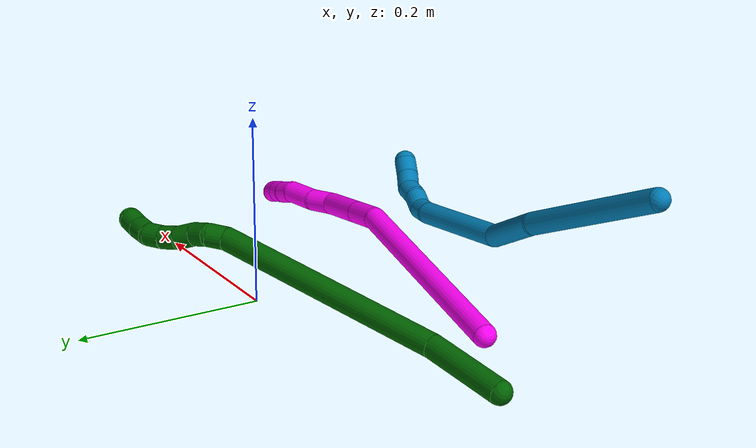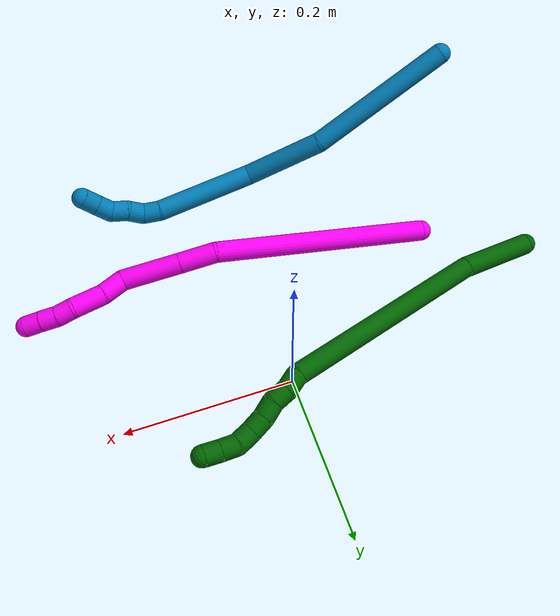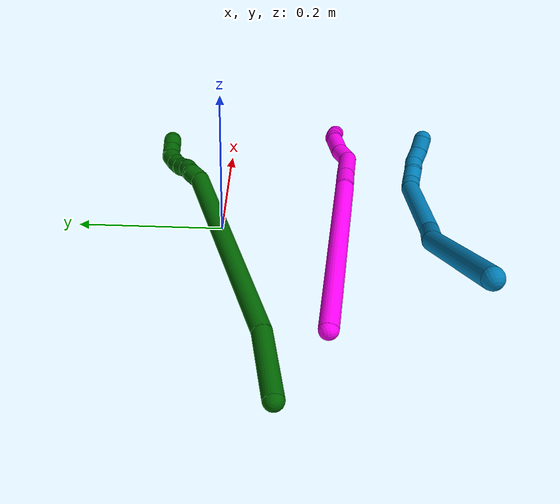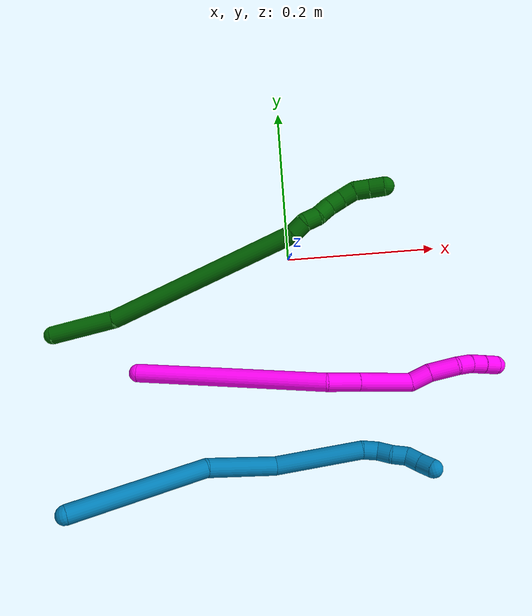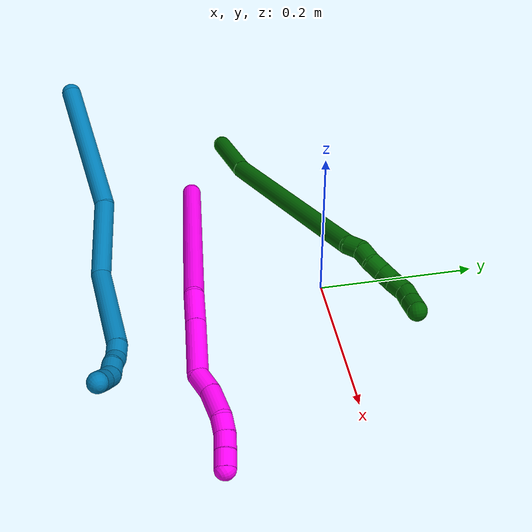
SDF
<sdf version="1.7">
 <world name="default">
  <model name="6">
   <static>0</static>
   <link name="6">
    <collision name="collision-cylinder-e_1_1_4">
     <pose>0.036785 0.009172 -0.02571 -2.79892 0.932396 -2.47918</pose>
     <geometry><cylinder><radius>0.0125</radius><length>0.091613</length></cylinder></geometry>
     <surface>
      <friction><ode><mu>1.16</mu><mu2>1.16</mu2><slip1>0</slip1><slip2>0</slip2></ode></friction>
      <contact><ode><kp>1e+06</kp><kd>1</kd><max_vel>0</max_vel><min_depth>0.001</min_depth></ode></contact>
     </surface>
    </collision>
    <visual name="visual-cylinder-e_1_1_4">
     <pose>0.036785 0.009172 -0.02571 -2.79892 0.932396 -2.47918</pose>
     <geometry><cylinder><radius>0.0125</radius><length>0.091613</length></cylinder></geometry>
     <material><ambient>0 0.392157 0.003922 1</ambient></material>
    </visual>
    <collision name="collision-cylinder-e_2_4_5">
     <pose>0.176231 0.068389 -0.121279 -2.51997 0.873853 -1.93662</pose>
     <geometry><cylinder><radius>0.0125</radius><length>0.267764</length></cylinder></geometry>
     <surface>
      <friction><ode><mu>1.16</mu><mu2>1.16</mu2><slip1>0</slip1><slip2>0</slip2></ode></friction>
      <contact><ode><kp>1e+06</kp><kd>1</kd><max_vel>0</max_vel><min_depth>0.001</min_depth></ode></contact>
     </surface>
    </collision>
    <visual name="visual-cylinder-e_2_4_5">
     <pose>0.176231 0.068389 -0.121279 -2.51997 0.873853 -1.93662</pose>
     <geometry><cylinder><radius>0.0125</radius><length>0.267764</length></cylinder></geometry>
     <material><ambient>0 0.392157 0.003922 1</ambient></material>
    </visual>
    <collision name="collision-cylinder-e_3_5_6">
     <pose>0.284785 0.125394 -0.195946 -2.1751 0.608401 -1.07831</pose>
     <geometry><cylinder><radius>0.0125</radius><length>0.020617</length></cylinder></geometry>
     <surface>
      <friction><ode><mu>1.16</mu><mu2>1.16</mu2><slip1>0</slip1><slip2>0</slip2></ode></friction>
      <contact><ode><kp>1e+06</kp><kd>1</kd><max_vel>0</max_vel><min_depth>0.001</min_depth></ode></contact>
     </surface>
    </collision>
    <visual name="visual-cylinder-e_3_5_6">
     <pose>0.284785 0.125394 -0.195946 -2.1751 0.608401 -1.07831</pose>
     <geometry><cylinder><radius>0.0125</radius><length>0.020617</length></cylinder></geometry>
     <material><ambient>0 0.392157 0.003922 1</ambient></material>
    </visual>
    <collision name="collision-cylinder-e_4_6_7">
     <pose>0.295729 0.136097 -0.208531 -2.69324 0.529536 -1.74316</pose>
     <geometry><cylinder><radius>0.0125</radius><length>0.020003</length></cylinder></geometry>
     <surface>
      <friction><ode><mu>1.16</mu><mu2>1.16</mu2><slip1>0</slip1><slip2>0</slip2></ode></friction>
      <contact><ode><kp>1e+06</kp><kd>1</kd><max_vel>0</max_vel><min_depth>0.001</min_depth></ode></contact>
     </surface>
    </collision>
    <visual name="visual-cylinder-e_4_6_7">
     <pose>0.295729 0.136097 -0.208531 -2.69324 0.529536 -1.74316</pose>
     <geometry><cylinder><radius>0.0125</radius><length>0.020003</length></cylinder></geometry>
     <material><ambient>0 0.392157 0.003922 1</ambient></material>
    </visual>
    <collision name="collision-cylinder-e_5_7_8">
     <pose>0.303567 0.145633 -0.22397 -2.494 0.282218 -0.800812</pose>
     <geometry><cylinder><radius>0.0125</radius><length>0.020003</length></cylinder></geometry>
     <surface>
      <friction><ode><mu>1.16</mu><mu2>1.16</mu2><slip1>0</slip1><slip2>0</slip2></ode></friction>
      <contact><ode><kp>1e+06</kp><kd>1</kd><max_vel>0</max_vel><min_depth>0.001</min_depth></ode></contact>
     </surface>
    </collision>
    <visual name="visual-cylinder-e_5_7_8">
     <pose>0.303567 0.145633 -0.22397 -2.494 0.282218 -0.800812</pose>
     <geometry><cylinder><radius>0.0125</radius><length>0.020003</length></cylinder></geometry>
     <material><ambient>0 0.392157 0.003922 1</ambient></material>
    </visual>
    <collision name="collision-cylinder-e_6_8_9">
     <pose>0.311201 0.156343 -0.238865 -2.54481 0.506239 -1.39848</pose>
     <geometry><cylinder><radius>0.0125</radius><length>0.02</length></cylinder></geometry>
     <surface>
      <friction><ode><mu>1.16</mu><mu2>1.16</mu2><slip1>0</slip1><slip2>0</slip2></ode></friction>
      <contact><ode><kp>1e+06</kp><kd>1</kd><max_vel>0</max_vel><min_depth>0.001</min_depth></ode></contact>
     </surface>
    </collision>
    <visual name="visual-cylinder-e_6_8_9">
     <pose>0.311201 0.156343 -0.238865 -2.54481 0.506239 -1.39848</pose>
     <geometry><cylinder><radius>0.0125</radius><length>0.02</length></cylinder></geometry>
     <material><ambient>0 0.392157 0.003922 1</ambient></material>
    </visual>
    <collision name="collision-cylinder-e_7_9_10">
     <pose>0.32207 0.166035 -0.252498 -2.50028 0.646008 -1.57862</pose>
     <geometry><cylinder><radius>0.0125</radius><length>0.02</length></cylinder></geometry>
     <surface>
      <friction><ode><mu>1.16</mu><mu2>1.16</mu2><slip1>0</slip1><slip2>0</slip2></ode></friction>
      <contact><ode><kp>1e+06</kp><kd>1</kd><max_vel>0</max_vel><min_depth>0.001</min_depth></ode></contact>
     </surface>
    </collision>
    <visual name="visual-cylinder-e_7_9_10">
     <pose>0.32207 0.166035 -0.252498 -2.50028 0.646008 -1.57862</pose>
     <geometry><cylinder><radius>0.0125</radius><length>0.02</length></cylinder></geometry>
     <material><ambient>0 0.392157 0.003922 1</ambient></material>
    </visual>
    <collision name="collision-cylinder-e_8_10_11">
     <pose>0.335654 0.171758 -0.265369 -2.99652 0.857769 -2.8264</pose>
     <geometry><cylinder><radius>0.0125</radius><length>0.02</length></cylinder></geometry>
     <surface>
      <friction><ode><mu>1.16</mu><mu2>1.16</mu2><slip1>0</slip1><slip2>0</slip2></ode></friction>
      <contact><ode><kp>1e+06</kp><kd>1</kd><max_vel>0</max_vel><min_depth>0.001</min_depth></ode></contact>
     </surface>
    </collision>
    <visual name="visual-cylinder-e_8_10_11">
     <pose>0.335654 0.171758 -0.265369 -2.99652 0.857769 -2.8264</pose>
     <geometry><cylinder><radius>0.0125</radius><length>0.02</length></cylinder></geometry>
     <material><ambient>0 0.392157 0.003922 1</ambient></material>
    </visual>
    <collision name="collision-cylinder-e_9_11_2">
     <pose>0.351439 0.173606 -0.277461 -2.98241 0.965241 -2.83946</pose>
     <geometry><cylinder><radius>0.0125</radius><length>0.02</length></cylinder></geometry>
     <surface>
      <friction><ode><mu>1.16</mu><mu2>1.16</mu2><slip1>0</slip1><slip2>0</slip2></ode></friction>
      <contact><ode><kp>1e+06</kp><kd>1</kd><max_vel>0</max_vel><min_depth>0.001</min_depth></ode></contact>
     </surface>
    </collision>
    <visual name="visual-cylinder-e_9_11_2">
     <pose>0.351439 0.173606 -0.277461 -2.98241 0.965241 -2.83946</pose>
     <geometry><cylinder><radius>0.0125</radius><length>0.02</length></cylinder></geometry>
     <material><ambient>0 0.392157 0.003922 1</ambient></material>
    </visual>
    <collision name="collision-sphere-2">
     <pose>0.359661 0.174508 -0.283082 0 -0 0</pose>
     <geometry><sphere><radius>0.0125</radius></sphere></geometry>
     <surface>
      <friction><ode><mu>1.16</mu><mu2>1.16</mu2><slip1>0</slip1><slip2>0</slip2></ode></friction>
      <contact><ode><kp>1e+06</kp><kd>1</kd><max_vel>0</max_vel><min_depth>0.001</min_depth></ode></contact>
     </surface>
    </collision>
    <visual name="visual-sphere-2">
     <pose>0.359661 0.174508 -0.283082 0 -0 0</pose>
     <geometry><sphere><radius>0.0125</radius></sphere></geometry>
     <material><ambient>0 0.392157 0.003922 1</ambient></material>
    </visual>
    <collision name="collision-sphere-11">
     <pose>0.343218 0.172703 -0.271841 0 -0 0</pose>
     <geometry><sphere><radius>0.0125</radius></sphere></geometry>
     <surface>
      <friction><ode><mu>1.16</mu><mu2>1.16</mu2><slip1>0</slip1><slip2>0</slip2></ode></friction>
      <contact><ode><kp>1e+06</kp><kd>1</kd><max_vel>0</max_vel><min_depth>0.001</min_depth></ode></contact>
     </surface>
    </collision>
    <visual name="visual-sphere-11">
     <pose>0.343218 0.172703 -0.271841 0 -0 0</pose>
     <geometry><sphere><radius>0.0125</radius></sphere></geometry>
     <material><ambient>0 0.392157 0.003922 1</ambient></material>
    </visual>
    <collision name="collision-sphere-10">
     <pose>0.32809 0.170812 -0.258896 0 -0 0</pose>
     <geometry><sphere><radius>0.0125</radius></sphere></geometry>
     <surface>
      <friction><ode><mu>1.16</mu><mu2>1.16</mu2><slip1>0</slip1><slip2>0</slip2></ode></friction>
      <contact><ode><kp>1e+06</kp><kd>1</kd><max_vel>0</max_vel><min_depth>0.001</min_depth></ode></contact>
     </surface>
    </collision>
    <visual name="visual-sphere-10">
     <pose>0.32809 0.170812 -0.258896 0 -0 0</pose>
     <geometry><sphere><radius>0.0125</radius></sphere></geometry>
     <material><ambient>0 0.392157 0.003922 1</ambient></material>
    </visual>
    <collision name="collision-sphere-9">
     <pose>0.31605 0.161258 -0.246099 0 -0 0</pose>
     <geometry><sphere><radius>0.0125</radius></sphere></geometry>
     <surface>
      <friction><ode><mu>1.16</mu><mu2>1.16</mu2><slip1>0</slip1><slip2>0</slip2></ode></friction>
      <contact><ode><kp>1e+06</kp><kd>1</kd><max_vel>0</max_vel><min_depth>0.001</min_depth></ode></contact>
     </surface>
    </collision>
    <visual name="visual-sphere-9">
     <pose>0.31605 0.161258 -0.246099 0 -0 0</pose>
     <geometry><sphere><radius>0.0125</radius></sphere></geometry>
     <material><ambient>0 0.392157 0.003922 1</ambient></material>
    </visual>
    <collision name="collision-sphere-4">
     <pose>0.07357 0.018344 -0.051419 0 -0 0</pose>
     <geometry><sphere><radius>0.0125</radius></sphere></geometry>
     <surface>
      <friction><ode><mu>1.16</mu><mu2>1.16</mu2><slip1>0</slip1><slip2>0</slip2></ode></friction>
      <contact><ode><kp>1e+06</kp><kd>1</kd><max_vel>0</max_vel><min_depth>0.001</min_depth></ode></contact>
     </surface>
    </collision>
    <visual name="visual-sphere-4">
     <pose>0.07357 0.018344 -0.051419 0 -0 0</pose>
     <geometry><sphere><radius>0.0125</radius></sphere></geometry>
     <material><ambient>0 0.392157 0.003922 1</ambient></material>
    </visual>
    <collision name="collision-sphere-1">
     <geometry><sphere><radius>0.0125</radius></sphere></geometry>
     <surface>
      <friction><ode><mu>1.16</mu><mu2>1.16</mu2><slip1>0</slip1><slip2>0</slip2></ode></friction>
      <contact><ode><kp>1e+06</kp><kd>1</kd><max_vel>0</max_vel><min_depth>0.001</min_depth></ode></contact>
     </surface>
    </collision>
    <visual name="visual-sphere-1">
     <geometry><sphere><radius>0.0125</radius></sphere></geometry>
     <material><ambient>0 0.392157 0.003922 1</ambient></material>
    </visual>
    <collision name="collision-sphere-8">
     <pose>0.306352 0.151428 -0.231631 0 -0 0</pose>
     <geometry><sphere><radius>0.0125</radius></sphere></geometry>
     <surface>
      <friction><ode><mu>1.16</mu><mu2>1.16</mu2><slip1>0</slip1><slip2>0</slip2></ode></friction>
      <contact><ode><kp>1e+06</kp><kd>1</kd><max_vel>0</max_vel><min_depth>0.001</min_depth></ode></contact>
     </surface>
    </collision>
    <visual name="visual-sphere-8">
     <pose>0.306352 0.151428 -0.231631 0 -0 0</pose>
     <geometry><sphere><radius>0.0125</radius></sphere></geometry>
     <material><ambient>0 0.392157 0.003922 1</ambient></material>
    </visual>
    <collision name="collision-sphere-5">
     <pose>0.278893 0.118434 -0.19114 0 -0 0</pose>
     <geometry><sphere><radius>0.0125</radius></sphere></geometry>
     <surface>
      <friction><ode><mu>1.16</mu><mu2>1.16</mu2><slip1>0</slip1><slip2>0</slip2></ode></friction>
      <contact><ode><kp>1e+06</kp><kd>1</kd><max_vel>0</max_vel><min_depth>0.001</min_depth></ode></contact>
     </surface>
    </collision>
    <visual name="visual-sphere-5">
     <pose>0.278893 0.118434 -0.19114 0 -0 0</pose>
     <geometry><sphere><radius>0.0125</radius></sphere></geometry>
     <material><ambient>0 0.392157 0.003922 1</ambient></material>
    </visual>
    <collision name="collision-sphere-6">
     <pose>0.290677 0.132355 -0.200752 0 -0 0</pose>
     <geometry><sphere><radius>0.0125</radius></sphere></geometry>
     <surface>
      <friction><ode><mu>1.16</mu><mu2>1.16</mu2><slip1>0</slip1><slip2>0</slip2></ode></friction>
      <contact><ode><kp>1e+06</kp><kd>1</kd><max_vel>0</max_vel><min_depth>0.001</min_depth></ode></contact>
     </surface>
    </collision>
    <visual name="visual-sphere-6">
     <pose>0.290677 0.132355 -0.200752 0 -0 0</pose>
     <geometry><sphere><radius>0.0125</radius></sphere></geometry>
     <material><ambient>0 0.392157 0.003922 1</ambient></material>
    </visual>
    <collision name="collision-sphere-7">
     <pose>0.300781 0.139839 -0.216309 0 -0 0</pose>
     <geometry><sphere><radius>0.0125</radius></sphere></geometry>
     <surface>
      <friction><ode><mu>1.16</mu><mu2>1.16</mu2><slip1>0</slip1><slip2>0</slip2></ode></friction>
      <contact><ode><kp>1e+06</kp><kd>1</kd><max_vel>0</max_vel><min_depth>0.001</min_depth></ode></contact>
     </surface>
    </collision>
    <visual name="visual-sphere-7">
     <pose>0.300781 0.139839 -0.216309 0 -0 0</pose>
     <geometry><sphere><radius>0.0125</radius></sphere></geometry>
     <material><ambient>0 0.392157 0.003922 1</ambient></material>
    </visual>
    <inertial>
     <pose>0.18965 0.081456 -0.136409 0 -0 0</pose>
     <mass>0.5</mass>
     <inertia>
      <ixx>-0.00137</ixx>
      <ixy>0</ixy>
      <ixz>0</ixz>
      <iyy>0.000222</iyy>
      <iyz>0</iyz>
      <izz>-0.001937</izz>
     </inertia>
    </inertial>
   </link>
   <pose>-0.329019 -0.079474 0.011486 0.027333 -0.779722 -0.043242</pose>
  </model>
  <model name="9">
   <static>0</static>
   <link name="9">
    <collision name="collision-cylinder-e_1_1_4">
     <pose>0.050382 -0.022411 -0.071257 2.83688 0.593389 2.21071</pose>
     <geometry><cylinder><radius>0.0125</radius><length>0.180202</length></cylinder></geometry>
     <surface>
      <friction><ode><mu>1.16</mu><mu2>1.16</mu2><slip1>0</slip1><slip2>0</slip2></ode></friction>
      <contact><ode><kp>1e+06</kp><kd>1</kd><max_vel>0</max_vel><min_depth>0.001</min_depth></ode></contact>
     </surface>
    </collision>
    <visual name="visual-cylinder-e_1_1_4">
     <pose>0.050382 -0.022411 -0.071257 2.83688 0.593389 2.21071</pose>
     <geometry><cylinder><radius>0.0125</radius><length>0.180202</length></cylinder></geometry>
     <material><ambient>0 0.490196 0.709804 1</ambient></material>
    </visual>
    <collision name="collision-cylinder-e_2_4_5">
     <pose>0.136798 -0.046043 -0.176285 3.10544 0.817481 3.05816</pose>
     <geometry><cylinder><radius>0.0125</radius><length>0.098799</length></cylinder></geometry>
     <surface>
      <friction><ode><mu>1.16</mu><mu2>1.16</mu2><slip1>0</slip1><slip2>0</slip2></ode></friction>
      <contact><ode><kp>1e+06</kp><kd>1</kd><max_vel>0</max_vel><min_depth>0.001</min_depth></ode></contact>
     </surface>
    </collision>
    <visual name="visual-cylinder-e_2_4_5">
     <pose>0.136798 -0.046043 -0.176285 3.10544 0.817481 3.05816</pose>
     <geometry><cylinder><radius>0.0125</radius><length>0.098799</length></cylinder></geometry>
     <material><ambient>0 0.490196 0.709804 1</ambient></material>
    </visual>
    <collision name="collision-cylinder-e_3_5_6">
     <pose>0.19305 -0.049074 -0.266385 3.10947 0.344459 2.95745</pose>
     <geometry><cylinder><radius>0.0125</radius><length>0.119752</length></cylinder></geometry>
     <surface>
      <friction><ode><mu>1.16</mu><mu2>1.16</mu2><slip1>0</slip1><slip2>0</slip2></ode></friction>
      <contact><ode><kp>1e+06</kp><kd>1</kd><max_vel>0</max_vel><min_depth>0.001</min_depth></ode></contact>
     </surface>
    </collision>
    <visual name="visual-cylinder-e_3_5_6">
     <pose>0.19305 -0.049074 -0.266385 3.10947 0.344459 2.95745</pose>
     <geometry><cylinder><radius>0.0125</radius><length>0.119752</length></cylinder></geometry>
     <material><ambient>0 0.490196 0.709804 1</ambient></material>
    </visual>
    <collision name="collision-cylinder-e_4_6_7">
     <pose>0.217846 -0.048878 -0.331956 -2.92784 0.450739 -2.26622</pose>
     <geometry><cylinder><radius>0.0125</radius><length>0.021012</length></cylinder></geometry>
     <surface>
      <friction><ode><mu>1.16</mu><mu2>1.16</mu2><slip1>0</slip1><slip2>0</slip2></ode></friction>
      <contact><ode><kp>1e+06</kp><kd>1</kd><max_vel>0</max_vel><min_depth>0.001</min_depth></ode></contact>
     </surface>
    </collision>
    <visual name="visual-cylinder-e_4_6_7">
     <pose>0.217846 -0.048878 -0.331956 -2.92784 0.450739 -2.26622</pose>
     <geometry><cylinder><radius>0.0125</radius><length>0.021012</length></cylinder></geometry>
     <material><ambient>0 0.490196 0.709804 1</ambient></material>
    </visual>
    <collision name="collision-cylinder-e_5_7_8">
     <pose>0.222503 -0.042143 -0.350135 -2.6549 0.007899 -0.031815</pose>
     <geometry><cylinder><radius>0.0125</radius><length>0.020225</length></cylinder></geometry>
     <surface>
      <friction><ode><mu>1.16</mu><mu2>1.16</mu2><slip1>0</slip1><slip2>0</slip2></ode></friction>
      <contact><ode><kp>1e+06</kp><kd>1</kd><max_vel>0</max_vel><min_depth>0.001</min_depth></ode></contact>
     </surface>
    </collision>
    <visual name="visual-cylinder-e_5_7_8">
     <pose>0.222503 -0.042143 -0.350135 -2.6549 0.007899 -0.031815</pose>
     <geometry><cylinder><radius>0.0125</radius><length>0.020225</length></cylinder></geometry>
     <material><ambient>0 0.490196 0.709804 1</ambient></material>
    </visual>
    <collision name="collision-cylinder-e_6_8_9">
     <pose>0.225143 -0.034555 -0.368308 -2.84143 0.258893 -1.42152</pose>
     <geometry><cylinder><radius>0.0125</radius><length>0.020001</length></cylinder></geometry>
     <surface>
      <friction><ode><mu>1.16</mu><mu2>1.16</mu2><slip1>0</slip1><slip2>0</slip2></ode></friction>
      <contact><ode><kp>1e+06</kp><kd>1</kd><max_vel>0</max_vel><min_depth>0.001</min_depth></ode></contact>
     </surface>
    </collision>
    <visual name="visual-cylinder-e_6_8_9">
     <pose>0.225143 -0.034555 -0.368308 -2.84143 0.258893 -1.42152</pose>
     <geometry><cylinder><radius>0.0125</radius><length>0.020001</length></cylinder></geometry>
     <material><ambient>0 0.490196 0.709804 1</ambient></material>
    </visual>
    <collision name="collision-cylinder-e_7_9_10">
     <pose>0.227434 -0.025077 -0.385038 -2.41819 -0.026857 0.07096</pose>
     <geometry><cylinder><radius>0.0125</radius><length>0.020007</length></cylinder></geometry>
     <surface>
      <friction><ode><mu>1.16</mu><mu2>1.16</mu2><slip1>0</slip1><slip2>0</slip2></ode></friction>
      <contact><ode><kp>1e+06</kp><kd>1</kd><max_vel>0</max_vel><min_depth>0.001</min_depth></ode></contact>
     </surface>
    </collision>
    <visual name="visual-cylinder-e_7_9_10">
     <pose>0.227434 -0.025077 -0.385038 -2.41819 -0.026857 0.07096</pose>
     <geometry><cylinder><radius>0.0125</radius><length>0.020007</length></cylinder></geometry>
     <material><ambient>0 0.490196 0.709804 1</ambient></material>
    </visual>
    <collision name="collision-cylinder-e_8_10_2">
     <pose>0.225482 -0.012294 -0.400227 -2.46609 -0.169126 0.473647</pose>
     <geometry><cylinder><radius>0.0125</radius><length>0.020003</length></cylinder></geometry>
     <surface>
      <friction><ode><mu>1.16</mu><mu2>1.16</mu2><slip1>0</slip1><slip2>0</slip2></ode></friction>
      <contact><ode><kp>1e+06</kp><kd>1</kd><max_vel>0</max_vel><min_depth>0.001</min_depth></ode></contact>
     </surface>
    </collision>
    <visual name="visual-cylinder-e_8_10_2">
     <pose>0.225482 -0.012294 -0.400227 -2.46609 -0.169126 0.473647</pose>
     <geometry><cylinder><radius>0.0125</radius><length>0.020003</length></cylinder></geometry>
     <material><ambient>0 0.490196 0.709804 1</ambient></material>
    </visual>
    <collision name="collision-sphere-2">
     <pose>0.223799 -0.006129 -0.407921 0 -0 0</pose>
     <geometry><sphere><radius>0.0125</radius></sphere></geometry>
     <surface>
      <friction><ode><mu>1.16</mu><mu2>1.16</mu2><slip1>0</slip1><slip2>0</slip2></ode></friction>
      <contact><ode><kp>1e+06</kp><kd>1</kd><max_vel>0</max_vel><min_depth>0.001</min_depth></ode></contact>
     </surface>
    </collision>
    <visual name="visual-sphere-2">
     <pose>0.223799 -0.006129 -0.407921 0 -0 0</pose>
     <geometry><sphere><radius>0.0125</radius></sphere></geometry>
     <material><ambient>0 0.490196 0.709804 1</ambient></material>
    </visual>
    <collision name="collision-sphere-10">
     <pose>0.227166 -0.018458 -0.392534 0 -0 0</pose>
     <geometry><sphere><radius>0.0125</radius></sphere></geometry>
     <surface>
      <friction><ode><mu>1.16</mu><mu2>1.16</mu2><slip1>0</slip1><slip2>0</slip2></ode></friction>
      <contact><ode><kp>1e+06</kp><kd>1</kd><max_vel>0</max_vel><min_depth>0.001</min_depth></ode></contact>
     </surface>
    </collision>
    <visual name="visual-sphere-10">
     <pose>0.227166 -0.018458 -0.392534 0 -0 0</pose>
     <geometry><sphere><radius>0.0125</radius></sphere></geometry>
     <material><ambient>0 0.490196 0.709804 1</ambient></material>
    </visual>
    <collision name="collision-sphere-9">
     <pose>0.227703 -0.031697 -0.377543 0 -0 0</pose>
     <geometry><sphere><radius>0.0125</radius></sphere></geometry>
     <surface>
      <friction><ode><mu>1.16</mu><mu2>1.16</mu2><slip1>0</slip1><slip2>0</slip2></ode></friction>
      <contact><ode><kp>1e+06</kp><kd>1</kd><max_vel>0</max_vel><min_depth>0.001</min_depth></ode></contact>
     </surface>
    </collision>
    <visual name="visual-sphere-9">
     <pose>0.227703 -0.031697 -0.377543 0 -0 0</pose>
     <geometry><sphere><radius>0.0125</radius></sphere></geometry>
     <material><ambient>0 0.490196 0.709804 1</ambient></material>
    </visual>
    <collision name="collision-sphere-4">
     <pose>0.100764 -0.044821 -0.142515 0 -0 0</pose>
     <geometry><sphere><radius>0.0125</radius></sphere></geometry>
     <surface>
      <friction><ode><mu>1.16</mu><mu2>1.16</mu2><slip1>0</slip1><slip2>0</slip2></ode></friction>
      <contact><ode><kp>1e+06</kp><kd>1</kd><max_vel>0</max_vel><min_depth>0.001</min_depth></ode></contact>
     </surface>
    </collision>
    <visual name="visual-sphere-4">
     <pose>0.100764 -0.044821 -0.142515 0 -0 0</pose>
     <geometry><sphere><radius>0.0125</radius></sphere></geometry>
     <material><ambient>0 0.490196 0.709804 1</ambient></material>
    </visual>
    <collision name="collision-sphere-1">
     <geometry><sphere><radius>0.0125</radius></sphere></geometry>
     <surface>
      <friction><ode><mu>1.16</mu><mu2>1.16</mu2><slip1>0</slip1><slip2>0</slip2></ode></friction>
      <contact><ode><kp>1e+06</kp><kd>1</kd><max_vel>0</max_vel><min_depth>0.001</min_depth></ode></contact>
     </surface>
    </collision>
    <visual name="visual-sphere-1">
     <geometry><sphere><radius>0.0125</radius></sphere></geometry>
     <material><ambient>0 0.490196 0.709804 1</ambient></material>
    </visual>
    <collision name="collision-sphere-8">
     <pose>0.222583 -0.037413 -0.359073 0 -0 0</pose>
     <geometry><sphere><radius>0.0125</radius></sphere></geometry>
     <surface>
      <friction><ode><mu>1.16</mu><mu2>1.16</mu2><slip1>0</slip1><slip2>0</slip2></ode></friction>
      <contact><ode><kp>1e+06</kp><kd>1</kd><max_vel>0</max_vel><min_depth>0.001</min_depth></ode></contact>
     </surface>
    </collision>
    <visual name="visual-sphere-8">
     <pose>0.222583 -0.037413 -0.359073 0 -0 0</pose>
     <geometry><sphere><radius>0.0125</radius></sphere></geometry>
     <material><ambient>0 0.490196 0.709804 1</ambient></material>
    </visual>
    <collision name="collision-sphere-5">
     <pose>0.172831 -0.047264 -0.210055 0 -0 0</pose>
     <geometry><sphere><radius>0.0125</radius></sphere></geometry>
     <surface>
      <friction><ode><mu>1.16</mu><mu2>1.16</mu2><slip1>0</slip1><slip2>0</slip2></ode></friction>
      <contact><ode><kp>1e+06</kp><kd>1</kd><max_vel>0</max_vel><min_depth>0.001</min_depth></ode></contact>
     </surface>
    </collision>
    <visual name="visual-sphere-5">
     <pose>0.172831 -0.047264 -0.210055 0 -0 0</pose>
     <geometry><sphere><radius>0.0125</radius></sphere></geometry>
     <material><ambient>0 0.490196 0.709804 1</ambient></material>
    </visual>
    <collision name="collision-sphere-6">
     <pose>0.21327 -0.050884 -0.322714 0 -0 0</pose>
     <geometry><sphere><radius>0.0125</radius></sphere></geometry>
     <surface>
      <friction><ode><mu>1.16</mu><mu2>1.16</mu2><slip1>0</slip1><slip2>0</slip2></ode></friction>
      <contact><ode><kp>1e+06</kp><kd>1</kd><max_vel>0</max_vel><min_depth>0.001</min_depth></ode></contact>
     </surface>
    </collision>
    <visual name="visual-sphere-6">
     <pose>0.21327 -0.050884 -0.322714 0 -0 0</pose>
     <geometry><sphere><radius>0.0125</radius></sphere></geometry>
     <material><ambient>0 0.490196 0.709804 1</ambient></material>
    </visual>
    <collision name="collision-sphere-7">
     <pose>0.222423 -0.046872 -0.341197 0 -0 0</pose>
     <geometry><sphere><radius>0.0125</radius></sphere></geometry>
     <surface>
      <friction><ode><mu>1.16</mu><mu2>1.16</mu2><slip1>0</slip1><slip2>0</slip2></ode></friction>
      <contact><ode><kp>1e+06</kp><kd>1</kd><max_vel>0</max_vel><min_depth>0.001</min_depth></ode></contact>
     </surface>
    </collision>
    <visual name="visual-sphere-7">
     <pose>0.222423 -0.046872 -0.341197 0 -0 0</pose>
     <geometry><sphere><radius>0.0125</radius></sphere></geometry>
     <material><ambient>0 0.490196 0.709804 1</ambient></material>
    </visual>
    <inertial>
     <pose>0.136707 -0.035565 -0.198579 0 -0 0</pose>
     <mass>0.5</mass>
     <inertia>
      <ixx>-6.1e-05</ixx>
      <ixy>0</ixy>
      <ixz>0</ixz>
      <iyy>0.000933</iyy>
      <iyz>0</iyz>
      <izz>-0.000294</izz>
     </inertia>
    </inertial>
   </link>
   <pose>-0.28977 -0.288014 0.149142 2.03499 0.988543 -0.935482</pose>
  </model>
  <model name="10">
   <static>0</static>
   <link name="10">
    <collision name="collision-cylinder-e_1_1_4">
     <pose>0.068774 -0.079267 -0.074893 2.32783 0.562657 1.18148</pose>
     <geometry><cylinder><radius>0.0125</radius><length>0.257854</length></cylinder></geometry>
     <surface>
      <friction><ode><mu>1.16</mu><mu2>1.16</mu2><slip1>0</slip1><slip2>0</slip2></ode></friction>
      <contact><ode><kp>1e+06</kp><kd>1</kd><max_vel>0</max_vel><min_depth>0.001</min_depth></ode></contact>
     </surface>
    </collision>
    <visual name="visual-cylinder-e_1_1_4">
     <pose>0.068774 -0.079267 -0.074893 2.32783 0.562657 1.18148</pose>
     <geometry><cylinder><radius>0.0125</radius><length>0.257854</length></cylinder></geometry>
     <material><ambient>1 0 0.964706 1</ambient></material>
    </visual>
    <collision name="collision-cylinder-e_2_4_5">
     <pose>0.153423 -0.166633 -0.162413 2.57126 0.813676 1.94673</pose>
     <geometry><cylinder><radius>0.0125</radius><length>0.043681</length></cylinder></geometry>
     <surface>
      <friction><ode><mu>1.16</mu><mu2>1.16</mu2><slip1>0</slip1><slip2>0</slip2></ode></friction>
      <contact><ode><kp>1e+06</kp><kd>1</kd><max_vel>0</max_vel><min_depth>0.001</min_depth></ode></contact>
     </surface>
    </collision>
    <visual name="visual-cylinder-e_2_4_5">
     <pose>0.153423 -0.166633 -0.162413 2.57126 0.813676 1.94673</pose>
     <geometry><cylinder><radius>0.0125</radius><length>0.043681</length></cylinder></geometry>
     <material><ambient>1 0 0.964706 1</ambient></material>
    </visual>
    <collision name="collision-cylinder-e_3_5_6">
     <pose>0.195035 -0.187478 -0.196016 2.59558 0.809118 1.98333</pose>
     <geometry><cylinder><radius>0.0125</radius><length>0.071132</length></cylinder></geometry>
     <surface>
      <friction><ode><mu>1.16</mu><mu2>1.16</mu2><slip1>0</slip1><slip2>0</slip2></ode></friction>
      <contact><ode><kp>1e+06</kp><kd>1</kd><max_vel>0</max_vel><min_depth>0.001</min_depth></ode></contact>
     </surface>
    </collision>
    <visual name="visual-cylinder-e_3_5_6">
     <pose>0.195035 -0.187478 -0.196016 2.59558 0.809118 1.98333</pose>
     <geometry><cylinder><radius>0.0125</radius><length>0.071132</length></cylinder></geometry>
     <material><ambient>1 0 0.964706 1</ambient></material>
    </visual>
    <collision name="collision-cylinder-e_4_6_7">
     <pose>0.232519 -0.208155 -0.219191 1.84109 0.959597 1.2</pose>
     <geometry><cylinder><radius>0.0125</radius><length>0.028684</length></cylinder></geometry>
     <surface>
      <friction><ode><mu>1.16</mu><mu2>1.16</mu2><slip1>0</slip1><slip2>0</slip2></ode></friction>
      <contact><ode><kp>1e+06</kp><kd>1</kd><max_vel>0</max_vel><min_depth>0.001</min_depth></ode></contact>
     </surface>
    </collision>
    <visual name="visual-cylinder-e_4_6_7">
     <pose>0.232519 -0.208155 -0.219191 1.84109 0.959597 1.2</pose>
     <geometry><cylinder><radius>0.0125</radius><length>0.028684</length></cylinder></geometry>
     <material><ambient>1 0 0.964706 1</ambient></material>
    </visual>
    <collision name="collision-cylinder-e_5_7_8">
     <pose>0.258642 -0.227021 -0.228188 2.12712 0.840428 1.35439</pose>
     <geometry><cylinder><radius>0.0125</radius><length>0.038601</length></cylinder></geometry>
     <surface>
      <friction><ode><mu>1.16</mu><mu2>1.16</mu2><slip1>0</slip1><slip2>0</slip2></ode></friction>
      <contact><ode><kp>1e+06</kp><kd>1</kd><max_vel>0</max_vel><min_depth>0.001</min_depth></ode></contact>
     </surface>
    </collision>
    <visual name="visual-cylinder-e_5_7_8">
     <pose>0.258642 -0.227021 -0.228188 2.12712 0.840428 1.35439</pose>
     <geometry><cylinder><radius>0.0125</radius><length>0.038601</length></cylinder></geometry>
     <material><ambient>1 0 0.964706 1</ambient></material>
    </visual>
    <collision name="collision-cylinder-e_6_8_9">
     <pose>0.281484 -0.240719 -0.239565 2.59843 1.00735 2.20583</pose>
     <geometry><cylinder><radius>0.0125</radius><length>0.020025</length></cylinder></geometry>
     <surface>
      <friction><ode><mu>1.16</mu><mu2>1.16</mu2><slip1>0</slip1><slip2>0</slip2></ode></friction>
      <contact><ode><kp>1e+06</kp><kd>1</kd><max_vel>0</max_vel><min_depth>0.001</min_depth></ode></contact>
     </surface>
    </collision>
    <visual name="visual-cylinder-e_6_8_9">
     <pose>0.281484 -0.240719 -0.239565 2.59843 1.00735 2.20583</pose>
     <geometry><cylinder><radius>0.0125</radius><length>0.020025</length></cylinder></geometry>
     <material><ambient>1 0 0.964706 1</ambient></material>
    </visual>
    <collision name="collision-cylinder-e_7_9_10">
     <pose>0.297368 -0.246241 -0.250261 2.71819 0.83549 2.23974</pose>
     <geometry><cylinder><radius>0.0125</radius><length>0.020007</length></cylinder></geometry>
     <surface>
      <friction><ode><mu>1.16</mu><mu2>1.16</mu2><slip1>0</slip1><slip2>0</slip2></ode></friction>
      <contact><ode><kp>1e+06</kp><kd>1</kd><max_vel>0</max_vel><min_depth>0.001</min_depth></ode></contact>
     </surface>
    </collision>
    <visual name="visual-cylinder-e_7_9_10">
     <pose>0.297368 -0.246241 -0.250261 2.71819 0.83549 2.23974</pose>
     <geometry><cylinder><radius>0.0125</radius><length>0.020007</length></cylinder></geometry>
     <material><ambient>1 0 0.964706 1</ambient></material>
    </visual>
    <collision name="collision-cylinder-e_8_10_2">
     <pose>0.312398 -0.251007 -0.262558 2.8272 0.8642 2.47949</pose>
     <geometry><cylinder><radius>0.0125</radius><length>0.020016</length></cylinder></geometry>
     <surface>
      <friction><ode><mu>1.16</mu><mu2>1.16</mu2><slip1>0</slip1><slip2>0</slip2></ode></friction>
      <contact><ode><kp>1e+06</kp><kd>1</kd><max_vel>0</max_vel><min_depth>0.001</min_depth></ode></contact>
     </surface>
    </collision>
    <visual name="visual-cylinder-e_8_10_2">
     <pose>0.312398 -0.251007 -0.262558 2.8272 0.8642 2.47949</pose>
     <geometry><cylinder><radius>0.0125</radius><length>0.020016</length></cylinder></geometry>
     <material><ambient>1 0 0.964706 1</ambient></material>
    </visual>
    <collision name="collision-sphere-2">
     <pose>0.32001 -0.253016 -0.268738 0 -0 0</pose>
     <geometry><sphere><radius>0.0125</radius></sphere></geometry>
     <surface>
      <friction><ode><mu>1.16</mu><mu2>1.16</mu2><slip1>0</slip1><slip2>0</slip2></ode></friction>
      <contact><ode><kp>1e+06</kp><kd>1</kd><max_vel>0</max_vel><min_depth>0.001</min_depth></ode></contact>
     </surface>
    </collision>
    <visual name="visual-sphere-2">
     <pose>0.32001 -0.253016 -0.268738 0 -0 0</pose>
     <geometry><sphere><radius>0.0125</radius></sphere></geometry>
     <material><ambient>1 0 0.964706 1</ambient></material>
    </visual>
    <collision name="collision-sphere-10">
     <pose>0.304787 -0.248998 -0.256379 0 -0 0</pose>
     <geometry><sphere><radius>0.0125</radius></sphere></geometry>
     <surface>
      <friction><ode><mu>1.16</mu><mu2>1.16</mu2><slip1>0</slip1><slip2>0</slip2></ode></friction>
      <contact><ode><kp>1e+06</kp><kd>1</kd><max_vel>0</max_vel><min_depth>0.001</min_depth></ode></contact>
     </surface>
    </collision>
    <visual name="visual-sphere-10">
     <pose>0.304787 -0.248998 -0.256379 0 -0 0</pose>
     <geometry><sphere><radius>0.0125</radius></sphere></geometry>
     <material><ambient>1 0 0.964706 1</ambient></material>
    </visual>
    <collision name="collision-sphere-9">
     <pose>0.289949 -0.243483 -0.244143 0 -0 0</pose>
     <geometry><sphere><radius>0.0125</radius></sphere></geometry>
     <surface>
      <friction><ode><mu>1.16</mu><mu2>1.16</mu2><slip1>0</slip1><slip2>0</slip2></ode></friction>
      <contact><ode><kp>1e+06</kp><kd>1</kd><max_vel>0</max_vel><min_depth>0.001</min_depth></ode></contact>
     </surface>
    </collision>
    <visual name="visual-sphere-9">
     <pose>0.289949 -0.243483 -0.244143 0 -0 0</pose>
     <geometry><sphere><radius>0.0125</radius></sphere></geometry>
     <material><ambient>1 0 0.964706 1</ambient></material>
    </visual>
    <collision name="collision-sphere-4">
     <pose>0.137548 -0.158534 -0.149787 0 -0 0</pose>
     <geometry><sphere><radius>0.0125</radius></sphere></geometry>
     <surface>
      <friction><ode><mu>1.16</mu><mu2>1.16</mu2><slip1>0</slip1><slip2>0</slip2></ode></friction>
      <contact><ode><kp>1e+06</kp><kd>1</kd><max_vel>0</max_vel><min_depth>0.001</min_depth></ode></contact>
     </surface>
    </collision>
    <visual name="visual-sphere-4">
     <pose>0.137548 -0.158534 -0.149787 0 -0 0</pose>
     <geometry><sphere><radius>0.0125</radius></sphere></geometry>
     <material><ambient>1 0 0.964706 1</ambient></material>
    </visual>
    <collision name="collision-sphere-1">
     <geometry><sphere><radius>0.0125</radius></sphere></geometry>
     <surface>
      <friction><ode><mu>1.16</mu><mu2>1.16</mu2><slip1>0</slip1><slip2>0</slip2></ode></friction>
      <contact><ode><kp>1e+06</kp><kd>1</kd><max_vel>0</max_vel><min_depth>0.001</min_depth></ode></contact>
     </surface>
    </collision>
    <visual name="visual-sphere-1">
     <geometry><sphere><radius>0.0125</radius></sphere></geometry>
     <material><ambient>1 0 0.964706 1</ambient></material>
    </visual>
    <collision name="collision-sphere-8">
     <pose>0.273019 -0.237955 -0.234987 0 -0 0</pose>
     <geometry><sphere><radius>0.0125</radius></sphere></geometry>
     <surface>
      <friction><ode><mu>1.16</mu><mu2>1.16</mu2><slip1>0</slip1><slip2>0</slip2></ode></friction>
      <contact><ode><kp>1e+06</kp><kd>1</kd><max_vel>0</max_vel><min_depth>0.001</min_depth></ode></contact>
     </surface>
    </collision>
    <visual name="visual-sphere-8">
     <pose>0.273019 -0.237955 -0.234987 0 -0 0</pose>
     <geometry><sphere><radius>0.0125</radius></sphere></geometry>
     <material><ambient>1 0 0.964706 1</ambient></material>
    </visual>
    <collision name="collision-sphere-5">
     <pose>0.169297 -0.174732 -0.17504 0 -0 0</pose>
     <geometry><sphere><radius>0.0125</radius></sphere></geometry>
     <surface>
      <friction><ode><mu>1.16</mu><mu2>1.16</mu2><slip1>0</slip1><slip2>0</slip2></ode></friction>
      <contact><ode><kp>1e+06</kp><kd>1</kd><max_vel>0</max_vel><min_depth>0.001</min_depth></ode></contact>
     </surface>
    </collision>
    <visual name="visual-sphere-5">
     <pose>0.169297 -0.174732 -0.17504 0 -0 0</pose>
     <geometry><sphere><radius>0.0125</radius></sphere></geometry>
     <material><ambient>1 0 0.964706 1</ambient></material>
    </visual>
    <collision name="collision-sphere-6">
     <pose>0.220774 -0.200224 -0.216993 0 -0 0</pose>
     <geometry><sphere><radius>0.0125</radius></sphere></geometry>
     <surface>
      <friction><ode><mu>1.16</mu><mu2>1.16</mu2><slip1>0</slip1><slip2>0</slip2></ode></friction>
      <contact><ode><kp>1e+06</kp><kd>1</kd><max_vel>0</max_vel><min_depth>0.001</min_depth></ode></contact>
     </surface>
    </collision>
    <visual name="visual-sphere-6">
     <pose>0.220774 -0.200224 -0.216993 0 -0 0</pose>
     <geometry><sphere><radius>0.0125</radius></sphere></geometry>
     <material><ambient>1 0 0.964706 1</ambient></material>
    </visual>
    <collision name="collision-sphere-7">
     <pose>0.244264 -0.216087 -0.221388 0 -0 0</pose>
     <geometry><sphere><radius>0.0125</radius></sphere></geometry>
     <surface>
      <friction><ode><mu>1.16</mu><mu2>1.16</mu2><slip1>0</slip1><slip2>0</slip2></ode></friction>
      <contact><ode><kp>1e+06</kp><kd>1</kd><max_vel>0</max_vel><min_depth>0.001</min_depth></ode></contact>
     </surface>
    </collision>
    <visual name="visual-sphere-7">
     <pose>0.244264 -0.216087 -0.221388 0 -0 0</pose>
     <geometry><sphere><radius>0.0125</radius></sphere></geometry>
     <material><ambient>1 0 0.964706 1</ambient></material>
    </visual>
    <inertial>
     <pose>0.145602 -0.141117 -0.141008 0 -0 0</pose>
     <mass>0.5</mass>
     <inertia>
      <ixx>0.001635</ixx>
      <ixy>0</ixy>
      <ixz>0</ixz>
      <iyy>0.001318</iyy>
      <iyz>0</iyz>
      <izz>7.7e-05</izz>
     </inertia>
    </inertial>
   </link>
   <pose>-0.216658 -0.139694 0.012026 -1.51355 0.638575 0.565205</pose>
  </model>
 </world>
</sdf>
